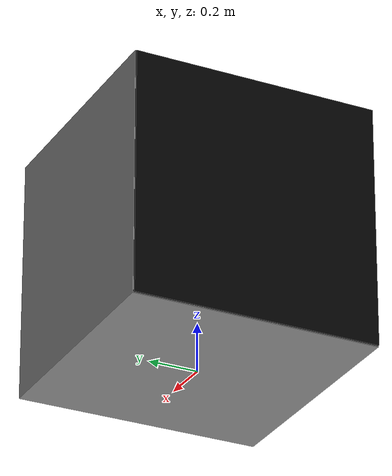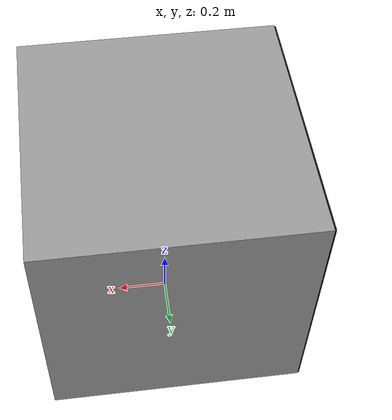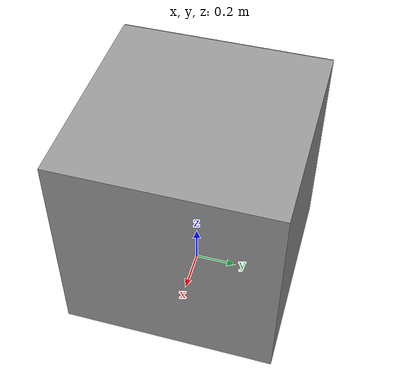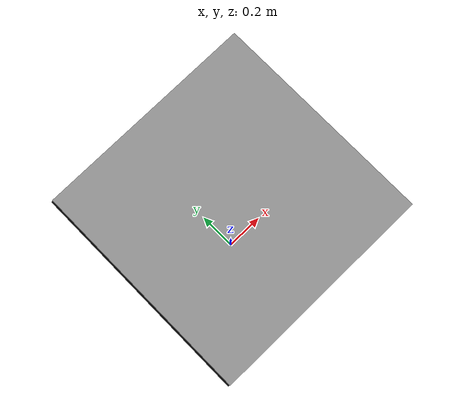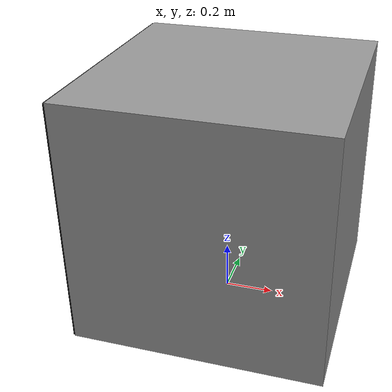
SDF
<?xml version='1.0'?>
<sdf version="1.5">
  <model name="simple_box">
    <pose>0 0 0.5 0 0 0</pose>
    <static>true</static>
    <link name="link">
      <inertial>
        <mass>1.0</mass>
        <inertia> <!-- inertias are tricky to compute -->
          <!-- http://gazebosim.org/tutorials?tut=inertia&cat=build_robot -->
          <ixx>0.083</ixx>       <!-- for a box: ixx = 0.083 * mass * (y*y + z*z) -->
          <ixy>0.0</ixy>         <!-- for a box: ixy = 0 -->
          <ixz>0.0</ixz>         <!-- for a box: ixz = 0 -->
          <iyy>0.083</iyy>       <!-- for a box: iyy = 0.083 * mass * (x*x + z*z) -->
          <iyz>0.0</iyz>         <!-- for a box: iyz = 0 -->
          <izz>0.083</izz>       <!-- for a box: izz = 0.083 * mass * (x*x + y*y) -->
        </inertia>
      </inertial>
      <collision name="collision">
        <geometry>
          <box>
            <size>1 1 1</size>
          </box>
        </geometry>
      </collision>
      <visual name="visual">
        <geometry>
          <box>
            <size>1 1 1</size>
          </box>
        </geometry>
        <material> <!-- LED material -->
            <ambient>0 0 0 1</ambient>
            <diffuse>0 0 0 1</diffuse>
            <specular>0 0 0 0</specular>
            <emissive>0 1 0 1</emissive>
        </material>
      </visual>
        <visual name="visual_black">
          <pose>0.01 0 0  0 0 0</pose>
          <geometry>
            <box>
              <size>1.005 1.005 1.005</size>
            </box>
          </geometry>
          <material>
            <script>
              <uri>file://media/materials/scripts/gazebo.material</uri>
              <name>Gazebo/Grey</name>
            </script>
          </material>
      </visual>
    </link>
  </model>
</sdf>
